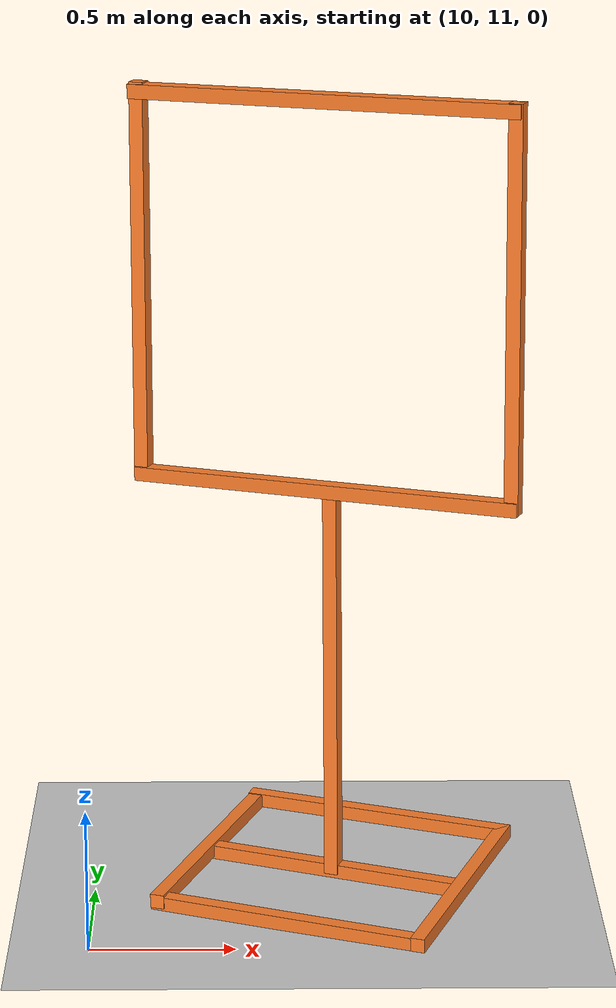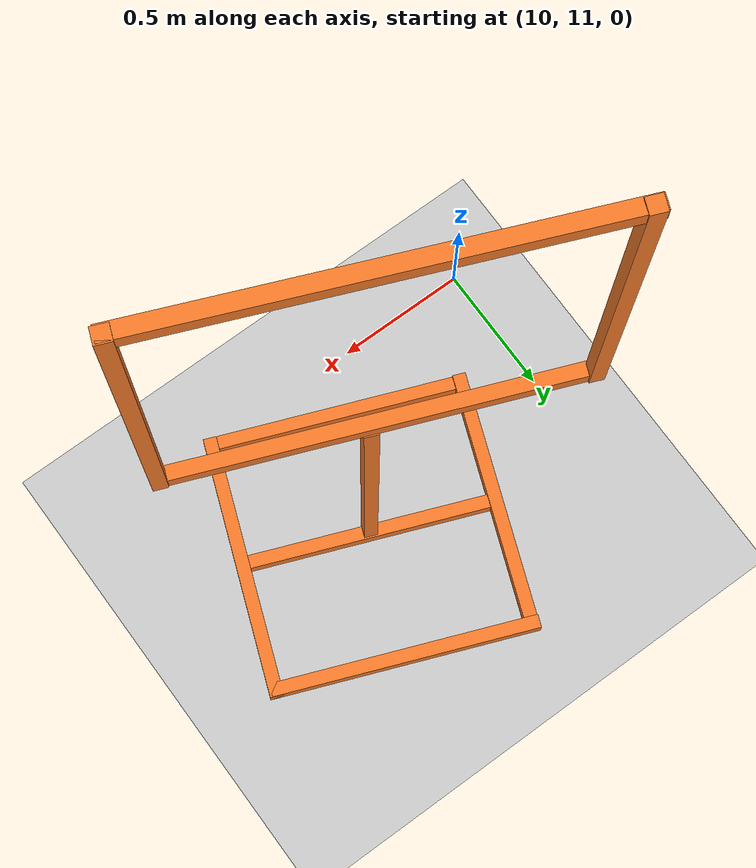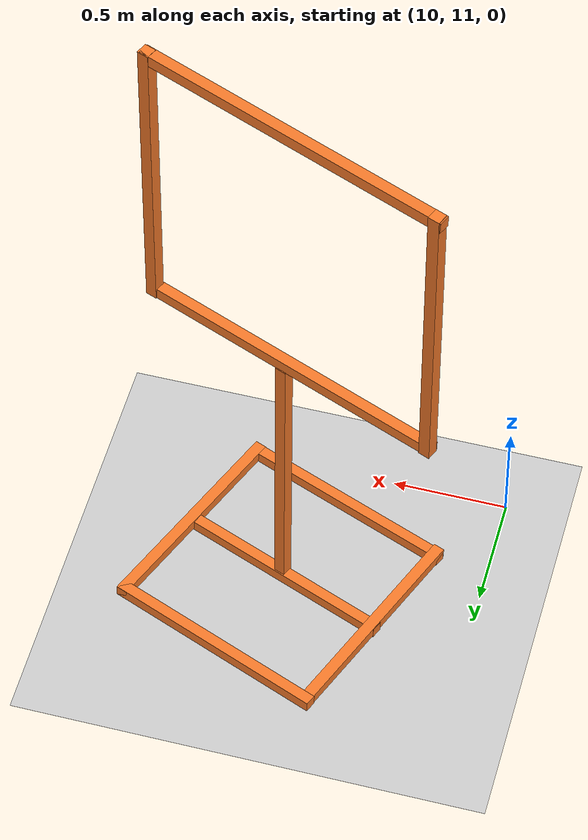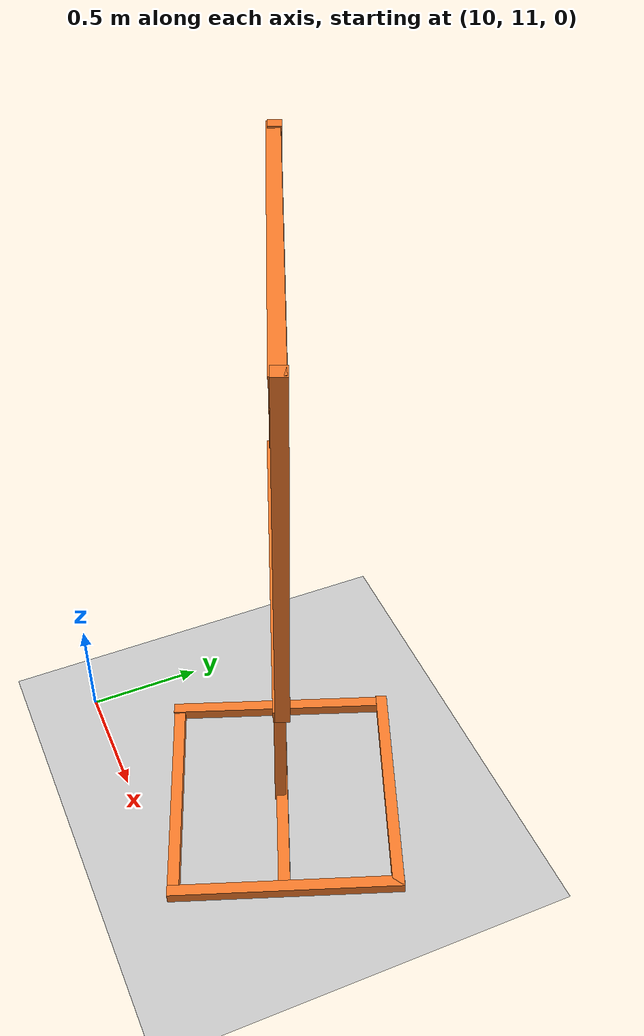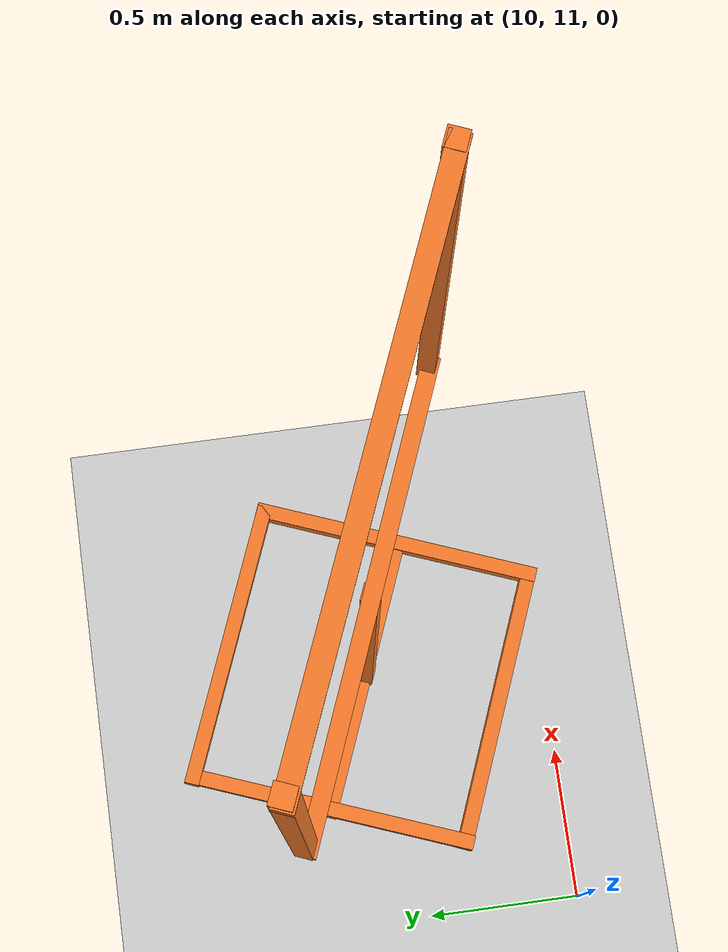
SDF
<sdf version="1.6">
 <world name="default">
  <model name="ground_plane">
   <static>1</static>
   <link name="link">
    <collision name="collision">
     <geometry><plane><normal>0 0 1</normal><size>100 100</size></plane></geometry>
     <surface><friction><ode><mu>100</mu><mu2>50</mu2></ode></friction></surface>
    </collision>
    <visual name="visual">
     <cast_shadows>0</cast_shadows>
     <geometry><plane><normal>0 0 1</normal><size>100 100</size></plane></geometry>
     <material>
      <script><uri>file://media/materials/scripts/gazebo.material</uri><name>Gazebo/Grey</name></script>
     </material>
    </visual>
    <velocity_decay><linear>0</linear><angular>0</angular></velocity_decay>
   </link>
  </model>
  <model name="closed_gate">
   <link name="link">
    <inertial>
     <mass>1</mass>
     <inertia>
      <ixx>0.166667</ixx>
      <ixy>0</ixy>
      <ixz>0</ixz>
      <iyy>0.166667</iyy>
      <iyz>0</iyz>
      <izz>0.166667</izz>
     </inertia>
    </inertial>
    <pose>0.404756 -0.715724 1.41623 0 -0 0</pose>
    <visual name="visual">
     <geometry><box><size>0.05 0.05 1.4</size></box></geometry>
     <material>
      <script><name>Gazebo/Grey</name><uri>file://media/materials/scripts/gazebo.material</uri></script>
      <shader type="vertex"><normal_map>__default__</normal_map></shader>
      <ambient>0.976 0.484 0.164 1</ambient>
      <diffuse>0.976 0.484 0.164 1</diffuse>
      <specular>0.01 0.01 0.01 1</specular>
      <emissive>0 0 0 1</emissive>
     </material>
    </visual>
    <collision name="collision">
     <geometry><box><size>0.05 0.05 1.4</size></box></geometry>
     <surface>
      <friction>
       <ode><mu>1</mu><mu2>1</mu2><fdir1>0 0 0</fdir1><slip1>0</slip1><slip2>0</slip2></ode>
       <torsional>
        <coefficient>1</coefficient>
        <patch_radius>0</patch_radius>
        <surface_radius>0</surface_radius>
        <use_patch_radius>1</use_patch_radius>
        <ode><slip>0</slip></ode>
       </torsional>
      </friction>
      <bounce><restitution_coefficient>0</restitution_coefficient><threshold>1e+06</threshold></bounce>
      <contact>
       <collide_without_contact>0</collide_without_contact>
       <collide_without_contact_bitmask>1</collide_without_contact_bitmask>
       <collide_bitmask>1</collide_bitmask>
       <ode>
        <soft_cfm>0</soft_cfm>
        <soft_erp>0.2</soft_erp>
        <kp>1e+13</kp>
        <kd>1</kd>
        <max_vel>0.01</max_vel>
        <min_depth>0</min_depth>
       </ode>
       <bullet>
        <split_impulse>1</split_impulse>
        <split_impulse_penetration_threshold>-0.01</split_impulse_penetration_threshold>
        <soft_cfm>0</soft_cfm>
        <soft_erp>0.2</soft_erp>
        <kp>1e+13</kp>
        <kd>1</kd>
       </bullet>
      </contact>
     </surface>
    </collision>
   </link>
   <link name="link_clone_0_clone_0">
    <inertial>
     <mass>1</mass>
     <inertia>
      <ixx>0.166667</ixx>
      <ixy>0</ixy>
      <ixz>0</ixz>
      <iyy>0.166667</iyy>
      <iyz>0</iyz>
      <izz>0.166667</izz>
     </inertia>
    </inertial>
    <pose>1.11096 -0.693594 -0.667388 -1.57955 0.044957 -1.56415</pose>
    <visual name="visual">
     <geometry><box><size>0.05 0.05 1</size></box></geometry>
     <material>
      <script><name>Gazebo/Grey</name><uri>file://media/materials/scripts/gazebo.material</uri></script>
      <shader type="vertex"><normal_map>__default__</normal_map></shader>
      <ambient>0.976 0.484 0.164 1</ambient>
      <diffuse>0.976 0.484 0.164 1</diffuse>
      <specular>0.01 0.01 0.01 1</specular>
      <emissive>0 0 0 1</emissive>
     </material>
    </visual>
    <collision name="collision">
     <geometry><box><size>0.05 0.05 1</size></box></geometry>
     <surface>
      <friction>
       <ode><mu>1</mu><mu2>1</mu2><fdir1>0 0 0</fdir1><slip1>0</slip1><slip2>0</slip2></ode>
       <torsional>
        <coefficient>1</coefficient>
        <patch_radius>0</patch_radius>
        <surface_radius>0</surface_radius>
        <use_patch_radius>1</use_patch_radius>
        <ode><slip>0</slip></ode>
       </torsional>
      </friction>
      <bounce><restitution_coefficient>0</restitution_coefficient><threshold>1e+06</threshold></bounce>
      <contact>
       <collide_without_contact>0</collide_without_contact>
       <collide_without_contact_bitmask>1</collide_without_contact_bitmask>
       <collide_bitmask>1</collide_bitmask>
       <ode>
        <soft_cfm>0</soft_cfm>
        <soft_erp>0.2</soft_erp>
        <kp>1e+13</kp>
        <kd>1</kd>
        <max_vel>0.01</max_vel>
        <min_depth>0</min_depth>
       </ode>
       <bullet>
        <split_impulse>1</split_impulse>
        <split_impulse_penetration_threshold>-0.01</split_impulse_penetration_threshold>
        <soft_cfm>0</soft_cfm>
        <soft_erp>0.2</soft_erp>
        <kp>1e+13</kp>
        <kd>1</kd>
       </bullet>
      </contact>
     </surface>
    </collision>
   </link>
   <link name="link_clone_0_clone_0_clone">
    <inertial>
     <mass>1</mass>
     <inertia>
      <ixx>0.166667</ixx>
      <ixy>0</ixy>
      <ixz>0</ixz>
      <iyy>0.166667</iyy>
      <iyz>0</iyz>
      <izz>0.166667</izz>
     </inertia>
    </inertial>
    <pose>0.637485 -0.695511 -0.656732 -1.55146 -0.019345 0.017432</pose>
    <visual name="visual">
     <geometry><box><size>0.05 0.05 1</size></box></geometry>
     <material>
      <script><name>Gazebo/Grey</name><uri>file://media/materials/scripts/gazebo.material</uri></script>
      <shader type="vertex"><normal_map>__default__</normal_map></shader>
      <ambient>0.976 0.484 0.164 1</ambient>
      <diffuse>0.976 0.484 0.164 1</diffuse>
      <specular>0.01 0.01 0.01 1</specular>
      <emissive>0 0 0 1</emissive>
     </material>
    </visual>
    <collision name="collision">
     <geometry><box><size>0.05 0.05 1</size></box></geometry>
     <surface>
      <friction>
       <ode><mu>1</mu><mu2>1</mu2><fdir1>0 0 0</fdir1><slip1>0</slip1><slip2>0</slip2></ode>
       <torsional>
        <coefficient>1</coefficient>
        <patch_radius>0</patch_radius>
        <surface_radius>0</surface_radius>
        <use_patch_radius>1</use_patch_radius>
        <ode><slip>0</slip></ode>
       </torsional>
      </friction>
      <bounce><restitution_coefficient>0</restitution_coefficient><threshold>1e+06</threshold></bounce>
      <contact>
       <collide_without_contact>0</collide_without_contact>
       <collide_without_contact_bitmask>1</collide_without_contact_bitmask>
       <collide_bitmask>1</collide_bitmask>
       <ode>
        <soft_cfm>0</soft_cfm>
        <soft_erp>0.2</soft_erp>
        <kp>1e+13</kp>
        <kd>1</kd>
        <max_vel>0.01</max_vel>
        <min_depth>0</min_depth>
       </ode>
       <bullet>
        <split_impulse>1</split_impulse>
        <split_impulse_penetration_threshold>-0.01</split_impulse_penetration_threshold>
        <soft_cfm>0</soft_cfm>
        <soft_erp>0.2</soft_erp>
        <kp>1e+13</kp>
        <kd>1</kd>
       </bullet>
      </contact>
     </surface>
    </collision>
   </link>
   <link name="link_clone_0_clone_0_clone_0">
    <inertial>
     <mass>1</mass>
     <inertia>
      <ixx>0.166667</ixx>
      <ixy>0</ixy>
      <ixz>0</ixz>
      <iyy>0.166667</iyy>
      <iyz>0</iyz>
      <izz>0.166667</izz>
     </inertia>
    </inertial>
    <pose>1.12077 -1.16283 -0.677317 -1.57839 0.053451 -1.56287</pose>
    <visual name="visual">
     <geometry><box><size>0.05 0.05 1</size></box></geometry>
     <material>
      <script><name>Gazebo/Grey</name><uri>file://media/materials/scripts/gazebo.material</uri></script>
      <shader type="vertex"><normal_map>__default__</normal_map></shader>
      <ambient>0.976 0.484 0.164 1</ambient>
      <diffuse>0.976 0.484 0.164 1</diffuse>
      <specular>0.01 0.01 0.01 1</specular>
      <emissive>0 0 0 1</emissive>
     </material>
    </visual>
    <collision name="collision">
     <geometry><box><size>0.05 0.05 1</size></box></geometry>
     <surface>
      <friction>
       <ode><mu>1</mu><mu2>1</mu2><fdir1>0 0 0</fdir1><slip1>0</slip1><slip2>0</slip2></ode>
       <torsional>
        <coefficient>1</coefficient>
        <patch_radius>0</patch_radius>
        <surface_radius>0</surface_radius>
        <use_patch_radius>1</use_patch_radius>
        <ode><slip>0</slip></ode>
       </torsional>
      </friction>
      <bounce><restitution_coefficient>0</restitution_coefficient><threshold>1e+06</threshold></bounce>
      <contact>
       <collide_without_contact>0</collide_without_contact>
       <collide_without_contact_bitmask>1</collide_without_contact_bitmask>
       <collide_bitmask>1</collide_bitmask>
       <ode>
        <soft_cfm>0</soft_cfm>
        <soft_erp>0.2</soft_erp>
        <kp>1e+13</kp>
        <kd>1</kd>
        <max_vel>0.01</max_vel>
        <min_depth>0</min_depth>
       </ode>
       <bullet>
        <split_impulse>1</split_impulse>
        <split_impulse_penetration_threshold>-0.01</split_impulse_penetration_threshold>
        <soft_cfm>0</soft_cfm>
        <soft_erp>0.2</soft_erp>
        <kp>1e+13</kp>
        <kd>1</kd>
       </bullet>
      </contact>
     </surface>
    </collision>
   </link>
   <link name="link_clone_0_clone_0_clone_2">
    <inertial>
     <mass>1</mass>
     <inertia>
      <ixx>0.166667</ixx>
      <ixy>0</ixy>
      <ixz>0</ixz>
      <iyy>0.166667</iyy>
      <iyz>0</iyz>
      <izz>0.166667</izz>
     </inertia>
    </inertial>
    <pose>1.10088 -0.214462 -0.645898 -1.57451 0.053447 -1.56287</pose>
    <visual name="visual">
     <geometry><box><size>0.05 0.05 1</size></box></geometry>
     <material>
      <script><name>Gazebo/Grey</name><uri>file://media/materials/scripts/gazebo.material</uri></script>
      <shader type="vertex"><normal_map>__default__</normal_map></shader>
      <ambient>0.976 0.484 0.164 1</ambient>
      <diffuse>0.976 0.484 0.164 1</diffuse>
      <specular>0.01 0.01 0.01 1</specular>
      <emissive>0 0 0 1</emissive>
     </material>
    </visual>
    <collision name="collision">
     <geometry><box><size>0.05 0.05 1</size></box></geometry>
     <surface>
      <friction>
       <ode><mu>1</mu><mu2>1</mu2><fdir1>0 0 0</fdir1><slip1>0</slip1><slip2>0</slip2></ode>
       <torsional>
        <coefficient>1</coefficient>
        <patch_radius>0</patch_radius>
        <surface_radius>0</surface_radius>
        <use_patch_radius>1</use_patch_radius>
        <ode><slip>0</slip></ode>
       </torsional>
      </friction>
      <bounce><restitution_coefficient>0</restitution_coefficient><threshold>1e+06</threshold></bounce>
      <contact>
       <collide_without_contact>0</collide_without_contact>
       <collide_without_contact_bitmask>1</collide_without_contact_bitmask>
       <collide_bitmask>1</collide_bitmask>
       <ode>
        <soft_cfm>0</soft_cfm>
        <soft_erp>0.2</soft_erp>
        <kp>1e+13</kp>
        <kd>1</kd>
        <max_vel>0.01</max_vel>
        <min_depth>0</min_depth>
       </ode>
       <bullet>
        <split_impulse>1</split_impulse>
        <split_impulse_penetration_threshold>-0.01</split_impulse_penetration_threshold>
        <soft_cfm>0</soft_cfm>
        <soft_erp>0.2</soft_erp>
        <kp>1e+13</kp>
        <kd>1</kd>
       </bullet>
      </contact>
     </surface>
    </collision>
   </link>
   <link name="link_clone_0_clone_0_clone_clone">
    <inertial>
     <mass>1</mass>
     <inertia>
      <ixx>0.166667</ixx>
      <ixy>0</ixy>
      <ixz>0</ixz>
      <iyy>0.166667</iyy>
      <iyz>0</iyz>
      <izz>0.166667</izz>
     </inertia>
    </inertial>
    <pose>1.59453 -0.684923 -0.663241 -1.53838 -0.023075 0.018345</pose>
    <visual name="visual">
     <geometry><box><size>0.05 0.05 1</size></box></geometry>
     <material>
      <script><name>Gazebo/Grey</name><uri>file://media/materials/scripts/gazebo.material</uri></script>
      <shader type="vertex"><normal_map>__default__</normal_map></shader>
      <ambient>0.976 0.484 0.164 1</ambient>
      <diffuse>0.976 0.484 0.164 1</diffuse>
      <specular>0.01 0.01 0.01 1</specular>
      <emissive>0 0 0 1</emissive>
     </material>
    </visual>
    <collision name="collision">
     <geometry><box><size>0.05 0.05 1</size></box></geometry>
     <surface>
      <friction>
       <ode><mu>1</mu><mu2>1</mu2><fdir1>0 0 0</fdir1><slip1>0</slip1><slip2>0</slip2></ode>
       <torsional>
        <coefficient>1</coefficient>
        <patch_radius>0</patch_radius>
        <surface_radius>0</surface_radius>
        <use_patch_radius>1</use_patch_radius>
        <ode><slip>0</slip></ode>
       </torsional>
      </friction>
      <bounce><restitution_coefficient>0</restitution_coefficient><threshold>1e+06</threshold></bounce>
      <contact>
       <collide_without_contact>0</collide_without_contact>
       <collide_without_contact_bitmask>1</collide_without_contact_bitmask>
       <collide_bitmask>1</collide_bitmask>
       <ode>
        <soft_cfm>0</soft_cfm>
        <soft_erp>0.2</soft_erp>
        <kp>1e+13</kp>
        <kd>1</kd>
        <max_vel>0.01</max_vel>
        <min_depth>0</min_depth>
       </ode>
       <bullet>
        <split_impulse>1</split_impulse>
        <split_impulse_penetration_threshold>-0.01</split_impulse_penetration_threshold>
        <soft_cfm>0</soft_cfm>
        <soft_erp>0.2</soft_erp>
        <kp>1e+13</kp>
        <kd>1</kd>
       </bullet>
      </contact>
     </surface>
    </collision>
   </link>
   <link name="link_clone_0_clone_1">
    <inertial>
     <mass>1</mass>
     <inertia>
      <ixx>0.166667</ixx>
      <ixy>0</ixy>
      <ixz>0</ixz>
      <iyy>0.166667</iyy>
      <iyz>0</iyz>
      <izz>0.166667</izz>
     </inertia>
    </inertial>
    <pose>1.08198 -0.717602 0.744079 -1.56201 0.04483 -1.56244</pose>
    <visual name="visual">
     <geometry><box><size>0.05 0.05 1.4</size></box></geometry>
     <material>
      <script><name>Gazebo/Grey</name><uri>file://media/materials/scripts/gazebo.material</uri></script>
      <shader type="vertex"><normal_map>__default__</normal_map></shader>
      <ambient>0.976 0.484 0.164 1</ambient>
      <diffuse>0.976 0.484 0.164 1</diffuse>
      <specular>0.01 0.01 0.01 1</specular>
      <emissive>0 0 0 1</emissive>
     </material>
    </visual>
    <collision name="collision">
     <geometry><box><size>0.05 0.05 1.4</size></box></geometry>
     <surface>
      <friction>
       <ode><mu>1</mu><mu2>1</mu2><fdir1>0 0 0</fdir1><slip1>0</slip1><slip2>0</slip2></ode>
       <torsional>
        <coefficient>1</coefficient>
        <patch_radius>0</patch_radius>
        <surface_radius>0</surface_radius>
        <use_patch_radius>1</use_patch_radius>
        <ode><slip>0</slip></ode>
       </torsional>
      </friction>
      <bounce><restitution_coefficient>0</restitution_coefficient><threshold>1e+06</threshold></bounce>
      <contact>
       <collide_without_contact>0</collide_without_contact>
       <collide_without_contact_bitmask>1</collide_without_contact_bitmask>
       <collide_bitmask>1</collide_bitmask>
       <ode>
        <soft_cfm>0</soft_cfm>
        <soft_erp>0.2</soft_erp>
        <kp>1e+13</kp>
        <kd>1</kd>
        <max_vel>0.01</max_vel>
        <min_depth>0</min_depth>
       </ode>
       <bullet>
        <split_impulse>1</split_impulse>
        <split_impulse_penetration_threshold>-0.01</split_impulse_penetration_threshold>
        <soft_cfm>0</soft_cfm>
        <soft_erp>0.2</soft_erp>
        <kp>1e+13</kp>
        <kd>1</kd>
       </bullet>
      </contact>
     </surface>
    </collision>
   </link>
   <link name="link_clone_0_clone_1_clone">
    <inertial>
     <mass>1</mass>
     <inertia>
      <ixx>0.166667</ixx>
      <ixy>0</ixy>
      <ixz>0</ixz>
      <iyy>0.166667</iyy>
      <iyz>0</iyz>
      <izz>0.166667</izz>
     </inertia>
    </inertial>
    <pose>1.07529 -0.719849 2.09328 -1.55888 0.053444 -1.57124</pose>
    <visual name="visual">
     <geometry><box><size>0.05 0.05 1.4</size></box></geometry>
     <material>
      <script><name>Gazebo/Grey</name><uri>file://media/materials/scripts/gazebo.material</uri></script>
      <shader type="vertex"><normal_map>__default__</normal_map></shader>
      <ambient>0.976 0.484 0.164 1</ambient>
      <diffuse>0.976 0.484 0.164 1</diffuse>
      <specular>0.01 0.01 0.01 1</specular>
      <emissive>0 0 0 1</emissive>
     </material>
    </visual>
    <collision name="collision">
     <geometry><box><size>0.05 0.05 1.4</size></box></geometry>
     <surface>
      <friction>
       <ode><mu>1</mu><mu2>1</mu2><fdir1>0 0 0</fdir1><slip1>0</slip1><slip2>0</slip2></ode>
       <torsional>
        <coefficient>1</coefficient>
        <patch_radius>0</patch_radius>
        <surface_radius>0</surface_radius>
        <use_patch_radius>1</use_patch_radius>
        <ode><slip>0</slip></ode>
       </torsional>
      </friction>
      <bounce><restitution_coefficient>0</restitution_coefficient><threshold>1e+06</threshold></bounce>
      <contact>
       <collide_without_contact>0</collide_without_contact>
       <collide_without_contact_bitmask>1</collide_without_contact_bitmask>
       <collide_bitmask>1</collide_bitmask>
       <ode>
        <soft_cfm>0</soft_cfm>
        <soft_erp>0.2</soft_erp>
        <kp>1e+13</kp>
        <kd>1</kd>
        <max_vel>0.01</max_vel>
        <min_depth>0</min_depth>
       </ode>
       <bullet>
        <split_impulse>1</split_impulse>
        <split_impulse_penetration_threshold>-0.01</split_impulse_penetration_threshold>
        <soft_cfm>0</soft_cfm>
        <soft_erp>0.2</soft_erp>
        <kp>1e+13</kp>
        <kd>1</kd>
       </bullet>
      </contact>
     </surface>
    </collision>
   </link>
   <link name="link_clone_1">
    <inertial>
     <mass>1</mass>
     <inertia>
      <ixx>0.166667</ixx>
      <ixy>0</ixy>
      <ixz>0</ixz>
      <iyy>0.166667</iyy>
      <iyz>0</iyz>
      <izz>0.166667</izz>
     </inertia>
    </inertial>
    <pose>1.11167 -0.706269 0.02254 0.008527 -0.003582 0.001077</pose>
    <visual name="visual">
     <geometry><box><size>0.05 0.05 1.4</size></box></geometry>
     <material>
      <script><name>Gazebo/Grey</name><uri>file://media/materials/scripts/gazebo.material</uri></script>
      <shader type="vertex"><normal_map>__default__</normal_map></shader>
      <ambient>0.976 0.484 0.164 1</ambient>
      <diffuse>0.976 0.484 0.164 1</diffuse>
      <specular>0.01 0.01 0.01 1</specular>
      <emissive>0 0 0 1</emissive>
     </material>
    </visual>
    <collision name="collision">
     <geometry><box><size>0.05 0.05 1.4</size></box></geometry>
     <surface>
      <friction>
       <ode><mu>1</mu><mu2>1</mu2><fdir1>0 0 0</fdir1><slip1>0</slip1><slip2>0</slip2></ode>
       <torsional>
        <coefficient>1</coefficient>
        <patch_radius>0</patch_radius>
        <surface_radius>0</surface_radius>
        <use_patch_radius>1</use_patch_radius>
        <ode><slip>0</slip></ode>
       </torsional>
      </friction>
      <bounce><restitution_coefficient>0</restitution_coefficient><threshold>1e+06</threshold></bounce>
      <contact>
       <collide_without_contact>0</collide_without_contact>
       <collide_without_contact_bitmask>1</collide_without_contact_bitmask>
       <collide_bitmask>1</collide_bitmask>
       <ode>
        <soft_cfm>0</soft_cfm>
        <soft_erp>0.2</soft_erp>
        <kp>1e+13</kp>
        <kd>1</kd>
        <max_vel>0.01</max_vel>
        <min_depth>0</min_depth>
       </ode>
       <bullet>
        <split_impulse>1</split_impulse>
        <split_impulse_penetration_threshold>-0.01</split_impulse_penetration_threshold>
        <soft_cfm>0</soft_cfm>
        <soft_erp>0.2</soft_erp>
        <kp>1e+13</kp>
        <kd>1</kd>
       </bullet>
      </contact>
     </surface>
    </collision>
   </link>
   <link name="link_clone_7">
    <inertial>
     <mass>1</mass>
     <inertia>
      <ixx>0.166667</ixx>
      <ixy>0</ixy>
      <ixz>0</ixz>
      <iyy>0.166667</iyy>
      <iyz>0</iyz>
      <izz>0.166667</izz>
     </inertia>
    </inertial>
    <pose>1.75876 -0.711707 1.42733 0.008527 -0.003582 0.001077</pose>
    <visual name="visual">
     <geometry><box><size>0.05 0.05 1.4</size></box></geometry>
     <material>
      <script><name>Gazebo/Grey</name><uri>file://media/materials/scripts/gazebo.material</uri></script>
      <shader type="vertex"><normal_map>__default__</normal_map></shader>
      <ambient>0.976 0.484 0.164 1</ambient>
      <diffuse>0.976 0.484 0.164 1</diffuse>
      <specular>0.01 0.01 0.01 1</specular>
      <emissive>0 0 0 1</emissive>
     </material>
    </visual>
    <collision name="collision">
     <geometry><box><size>0.05 0.05 1.4</size></box></geometry>
     <surface>
      <friction>
       <ode><mu>1</mu><mu2>1</mu2><fdir1>0 0 0</fdir1><slip1>0</slip1><slip2>0</slip2></ode>
       <torsional>
        <coefficient>1</coefficient>
        <patch_radius>0</patch_radius>
        <surface_radius>0</surface_radius>
        <use_patch_radius>1</use_patch_radius>
        <ode><slip>0</slip></ode>
       </torsional>
      </friction>
      <bounce><restitution_coefficient>0</restitution_coefficient><threshold>1e+06</threshold></bounce>
      <contact>
       <collide_without_contact>0</collide_without_contact>
       <collide_without_contact_bitmask>1</collide_without_contact_bitmask>
       <collide_bitmask>1</collide_bitmask>
       <ode>
        <soft_cfm>0</soft_cfm>
        <soft_erp>0.2</soft_erp>
        <kp>1e+13</kp>
        <kd>1</kd>
        <max_vel>0.01</max_vel>
        <min_depth>0</min_depth>
       </ode>
       <bullet>
        <split_impulse>1</split_impulse>
        <split_impulse_penetration_threshold>-0.01</split_impulse_penetration_threshold>
        <soft_cfm>0</soft_cfm>
        <soft_erp>0.2</soft_erp>
        <kp>1e+13</kp>
        <kd>1</kd>
       </bullet>
      </contact>
     </surface>
    </collision>
   </link>
   <static>1</static>
   <pose>10.071 12.6748 0.69998 0 0 -0.384263</pose>
  </model>
 </world>
</sdf>
